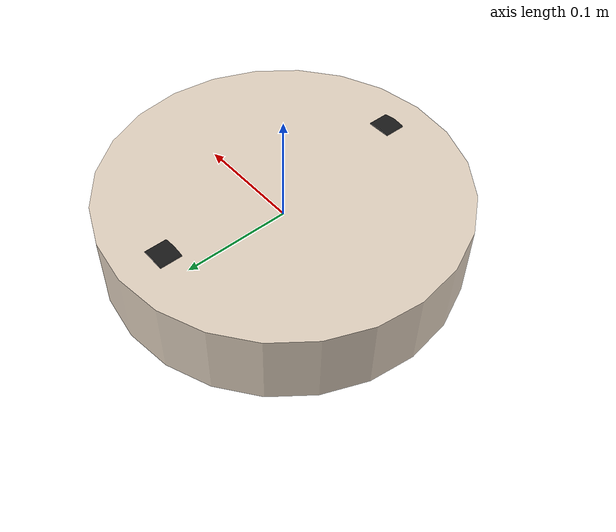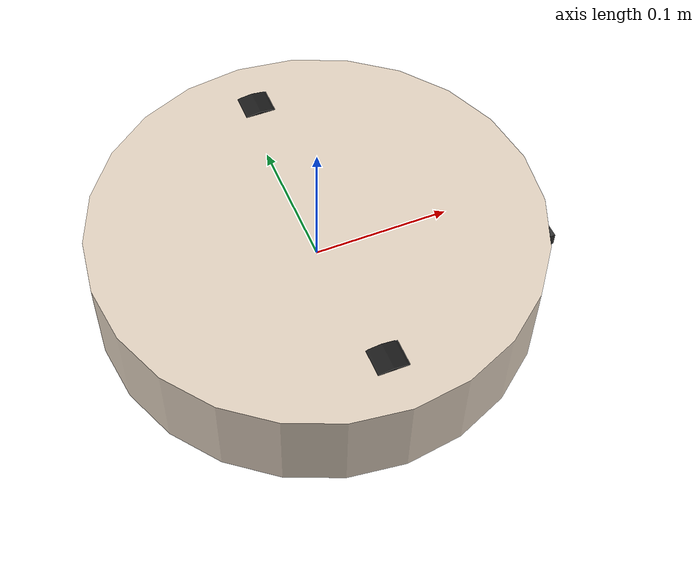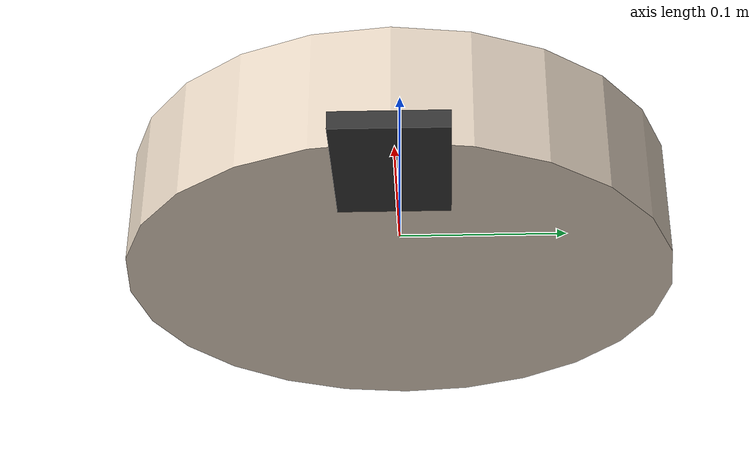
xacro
<?xml version="1.0"?>
<robot xmlns:xacro="http://www.ros.org/wiki/xacro" name="robot_b">
  <xacro:include filename="common_robot.xacro"/>

  <xacro:arg name="prefix" default="robot_b_"/>
  <xacro:property name="prefix" value="$(arg prefix)"/>

  <xacro:roomba_base prefix="${prefix}" chassis_rgba="0.88 0.82 0.75 1"/>

  <!-- Front-underneath plate for vacuum attraction -->
  <link name="vacuum_link">
    <inertial>
      <mass value="0.02"/>
      <inertia ixx="1e-5" ixy="0" ixz="0" iyy="1e-5" iyz="0" izz="1e-5"/>
    </inertial>
    <visual>
      <origin xyz="0 0 0" rpy="0 0 0"/>
      <geometry>
        <box size="0.08 0.06 0.01"/>
      </geometry>
      <material name="${prefix}grip_mat"><color rgba="0.2 0.2 0.2 1"/></material>
    </visual>
    <collision>
      <origin xyz="0 0 0" rpy="0 0 0"/>
      <geometry>
        <box size="0.08 0.06 0.01"/>
      </geometry>
    </collision>
  </link>
  <joint name="${prefix}gripper_joint" type="fixed">
    <parent link="${prefix}base_link"/>
    <child link="vacuum_link"/>
    <origin xyz="0.14 0 ${-0.035}" rpy="0 0 0"/>
  </joint>

  <!-- Keep vacuum as its own link in SDF (otherwise fixed joints lump into base and GetLink fails). -->
  <gazebo reference="${prefix}gripper_joint">
    <preserveFixedJoint>true</preserveFixedJoint>
  </gazebo>

  <gazebo>
    <plugin name="planar_move_b" filename="libgazebo_ros_planar_move.so">
      <ros>
        <namespace>/robot_b</namespace>
        <qos>
          <topic name="cmd_vel">
            <subscription>
              <reliability>reliable</reliability>
              <history depth="10">keep_last</history>
            </subscription>
          </topic>
        </qos>
      </ros>
      <update_rate>100</update_rate>
      <publish_rate>50</publish_rate>
      <publish_odom>true</publish_odom>
      <publish_odom_tf>true</publish_odom_tf>
      <odometry_frame>robot_b_odom</odometry_frame>
      <robot_base_frame>${prefix}base_link</robot_base_frame>
    </plugin>

    <plugin name="vacuum_gripper_b" filename="libgazebo_ros_vacuum_gripper.so">
      <ros>
        <namespace>/robot_b</namespace>
        <remapping>switch:=activate_vacuum</remapping>
      </ros>
      <link_name>vacuum_link</link_name>
      <!-- Cube center must stay within this radius of vacuum_link for attraction force. -->
      <max_distance>0.18</max_distance>
      <fixed>ground_plane</fixed>
    </plugin>

    <plugin name="jsp_b" filename="libgazebo_ros_joint_state_publisher.so">
      <ros>
        <namespace>/robot_b</namespace>
        <remapping>~/joint_states:=/robot_b/joint_states</remapping>
      </ros>
      <joint_name>${prefix}left_wheel_joint</joint_name>
      <joint_name>${prefix}right_wheel_joint</joint_name>
      <update_rate>50</update_rate>
    </plugin>
  </gazebo>
</robot>

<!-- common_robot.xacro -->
<robot xmlns:xacro="http://www.ros.org/wiki/xacro">
  <!--
    Common differential-drive base: cylindrical chassis, two driven wheels, one caster.
    Args:
      prefix: unique link/joint prefix, e.g. robot_a_
      chassis_rgba: visual color
  -->
  <xacro:property name="chassis_radius" value="0.16"/>
  <xacro:property name="chassis_height" value="0.07"/>
  <!-- Higher mass reduces "coin on edge" tipping in ODE. -->
  <xacro:property name="chassis_mass" value="4.5"/>
  <xacro:property name="wheel_radius" value="0.036"/>
  <xacro:property name="wheel_width" value="0.02"/>
  <xacro:property name="wheel_mass" value="0.08"/>
  <xacro:property name="wheel_sep" value="0.24"/>
  <xacro:property name="caster_radius" value="0.018"/>
  <xacro:property name="caster_mass" value="0.02"/>

  <xacro:macro name="cylinder_inertial" params="m r h">
    <inertial>
      <mass value="${m}"/>
      <inertia ixx="${m * (3*r*r + h*h) / 12}" ixy="0.0" ixz="0.0"
               iyy="${m * (3*r*r + h*h) / 12}" iyz="0.0"
               izz="${m * r*r / 2}"/>
    </inertial>
  </xacro:macro>

  <xacro:macro name="wheel_inertial" params="m r h">
    <inertial>
      <mass value="${m}"/>
      <inertia ixx="${m * (3*r*r + h*h) / 12}" ixy="0.0" ixz="0.0"
               iyy="${m * (3*r*r + h*h) / 12}" iyz="0.0"
               izz="${m * r*r / 2}"/>
    </inertial>
  </xacro:macro>

  <xacro:macro name="sphere_inertial" params="m r">
    <inertial>
      <mass value="${m}"/>
      <inertia ixx="${0.4*m*r*r}" ixy="0.0" ixz="0.0"
               iyy="${0.4*m*r*r}" iyz="0.0"
               izz="${0.4*m*r*r}"/>
    </inertial>
  </xacro:macro>

  <xacro:macro name="roomba_base" params="prefix chassis_rgba">
    <link name="${prefix}base_link">
      <xacro:cylinder_inertial m="${chassis_mass}" r="${chassis_radius}" h="${chassis_height}"/>
      <visual>
        <origin xyz="0 0 0" rpy="0 0 0"/>
        <geometry>
          <cylinder length="${chassis_height}" radius="${chassis_radius}"/>
        </geometry>
        <material name="${prefix}chassis_mat">
          <color rgba="${chassis_rgba}"/>
        </material>
      </visual>
      <collision>
        <origin xyz="0 0 0" rpy="0 0 0"/>
        <geometry>
          <cylinder length="${chassis_height}" radius="${chassis_radius}"/>
        </geometry>
      </collision>
    </link>

    <!-- Wheels: same convention as libgazebo_ros_diff_drive demo (spin axis matches plugin). -->
    <link name="${prefix}left_wheel_link">
      <xacro:wheel_inertial m="${wheel_mass}" r="${wheel_radius}" h="${wheel_width}"/>
      <visual>
        <origin xyz="0 0 0" rpy="0 0 0"/>
        <geometry>
          <cylinder length="${wheel_width}" radius="${wheel_radius}"/>
        </geometry>
        <material name="${prefix}wheel_mat"><color rgba="0.1 0.1 0.1 1"/></material>
      </visual>
      <collision>
        <origin xyz="0 0 0" rpy="0 0 0"/>
        <geometry>
          <cylinder length="${wheel_width}" radius="${wheel_radius}"/>
        </geometry>
      </collision>
    </link>

    <link name="${prefix}right_wheel_link">
      <xacro:wheel_inertial m="${wheel_mass}" r="${wheel_radius}" h="${wheel_width}"/>
      <visual>
        <origin xyz="0 0 0" rpy="0 0 0"/>
        <geometry>
          <cylinder length="${wheel_width}" radius="${wheel_radius}"/>
        </geometry>
        <material name="${prefix}wheel_mat2"><color rgba="0.1 0.1 0.1 1"/></material>
      </visual>
      <collision>
        <origin xyz="0 0 0" rpy="0 0 0"/>
        <geometry>
          <cylinder length="${wheel_width}" radius="${wheel_radius}"/>
        </geometry>
      </collision>
    </link>

    <link name="${prefix}caster_link">
      <xacro:sphere_inertial m="${caster_mass}" r="${caster_radius}"/>
      <visual>
        <geometry>
          <sphere radius="${caster_radius}"/>
        </geometry>
        <material name="${prefix}caster_mat"><color rgba="0.3 0.3 0.3 1"/></material>
      </visual>
      <collision>
        <geometry>
          <sphere radius="${caster_radius}"/>
        </geometry>
      </collision>
    </link>

    <joint name="${prefix}left_wheel_joint" type="continuous">
      <parent link="${prefix}base_link"/>
      <child link="${prefix}left_wheel_link"/>
      <origin xyz="0 ${wheel_sep/2} ${-chassis_height/2 + wheel_radius}" rpy="-1.57079632679 0 0"/>
      <axis xyz="0 0 1"/>
      <dynamics damping="0.02" friction="0.05"/>
    </joint>

    <joint name="${prefix}right_wheel_joint" type="continuous">
      <parent link="${prefix}base_link"/>
      <child link="${prefix}right_wheel_link"/>
      <origin xyz="0 ${-wheel_sep/2} ${-chassis_height/2 + wheel_radius}" rpy="-1.57079632679 0 0"/>
      <axis xyz="0 0 1"/>
      <dynamics damping="0.02" friction="0.05"/>
    </joint>

    <joint name="${prefix}caster_joint" type="fixed">
      <parent link="${prefix}base_link"/>
      <child link="${prefix}caster_link"/>
      <origin xyz="-${chassis_radius*0.55} 0 ${-chassis_height/2 + wheel_radius - caster_radius}" rpy="0 0 0"/>
    </joint>

    <gazebo reference="${prefix}base_link">
      <material>Gazebo/Grey</material>
      <mu1>0.9</mu1><mu2>0.9</mu2>
    </gazebo>
    <gazebo reference="${prefix}left_wheel_link">
      <material>Gazebo/Black</material>
      <mu1>1.8</mu1><mu2>1.8</mu2>
      <kp>500000.0</kp>
      <kd>20.0</kd>
      <minDepth>0.001</minDepth>
      <maxVel>10.0</maxVel>
    </gazebo>
    <gazebo reference="${prefix}right_wheel_link">
      <material>Gazebo/Black</material>
      <mu1>1.8</mu1><mu2>1.8</mu2>
      <kp>500000.0</kp>
      <kd>20.0</kd>
      <minDepth>0.001</minDepth>
      <maxVel>10.0</maxVel>
    </gazebo>
    <gazebo reference="${prefix}caster_link">
      <material>Gazebo/Black</material>
      <mu1>0.6</mu1><mu2>0.6</mu2>
      <kp>100000.0</kp>
      <kd>10.0</kd>
    </gazebo>
  </xacro:macro>
</robot>
